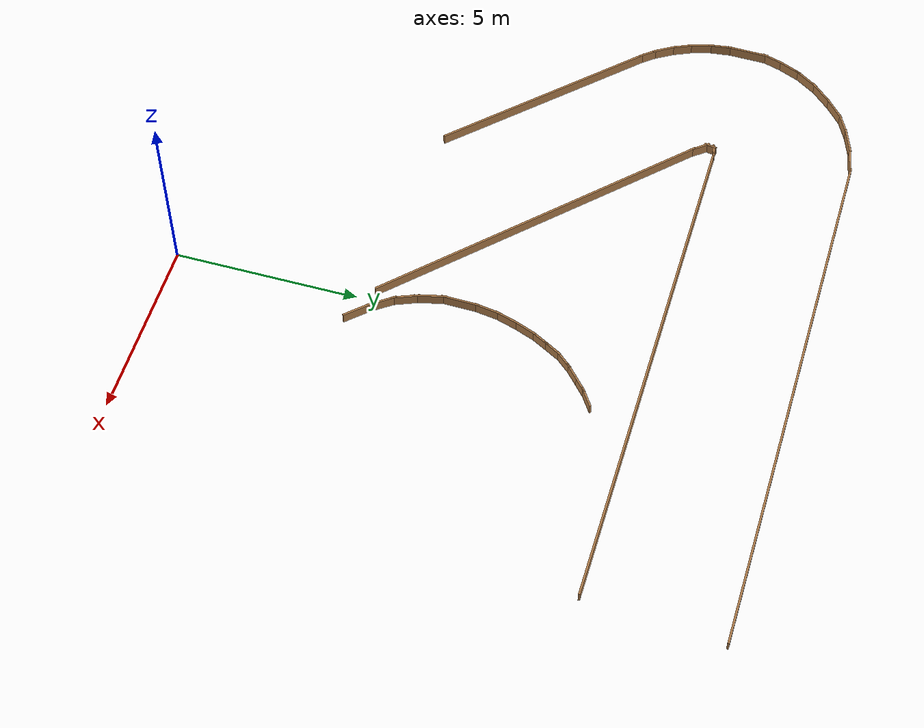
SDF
<sdf version="1.6">
 <model name="rover_racetrack">
  <pose>3.369 -0.8264 0 0 -0 0</pose>
  <link name="Wall_244">
   <collision name="Wall_244_Collision">
    <geometry><box><size>6.3767 0.05 0.3</size></box></geometry>
    <pose>0 0 0.15 0 -0 0</pose>
   </collision>
   <visual name="Wall_244_Visual">
    <pose>0 0 0.15 0 -0 0</pose>
    <geometry><box><size>6.3767 0.05 0.3</size></box></geometry>
    <material>
     <script><uri>file://media/materials/scripts/gazebo.material</uri><name>Gazebo/Wood</name></script>
     <ambient>0.435294 0.796078 0.67451 1</ambient>
    </material>
   </visual>
   <pose>-11.2879 8.75753 0 0 -0 2.34846</pose>
  </link>
  <link name="Wall_246">
   <collision name="Wall_246_Collision">
    <geometry><box><size>0.561974 0.05 0.3</size></box></geometry>
    <pose>0 0 0.15 0 -0 0</pose>
   </collision>
   <visual name="Wall_246_Visual">
    <pose>0 0 0.15 0 -0 0</pose>
    <geometry><box><size>0.561974 0.05 0.3</size></box></geometry>
    <material>
     <script><uri>file://media/materials/scripts/gazebo.material</uri><name>Gazebo/Wood</name></script>
     <ambient>0.435294 0.796078 0.67451 1</ambient>
    </material>
   </visual>
   <pose>-13.6021 11.1359 0 0 -0 2.25272</pose>
  </link>
  <link name="Wall_247">
   <collision name="Wall_247_Collision">
    <geometry><box><size>0.68226 0.05 0.3</size></box></geometry>
    <pose>0 0 0.15 0 -0 0</pose>
   </collision>
   <visual name="Wall_247_Visual">
    <pose>0 0 0.15 0 -0 0</pose>
    <geometry><box><size>0.68226 0.05 0.3</size></box></geometry>
    <material>
     <script><uri>file://media/materials/scripts/gazebo.material</uri><name>Gazebo/Wood</name></script>
     <ambient>0.435294 0.796078 0.67451 1</ambient>
    </material>
   </visual>
   <pose>-13.8714 11.5225 0 0 -0 2.12245</pose>
  </link>
  <link name="Wall_248">
   <collision name="Wall_248_Collision">
    <geometry><box><size>0.665137 0.05 0.3</size></box></geometry>
    <pose>0 0 0.15 0 -0 0</pose>
   </collision>
   <visual name="Wall_248_Visual">
    <pose>0 0 0.15 0 -0 0</pose>
    <geometry><box><size>0.665137 0.05 0.3</size></box></geometry>
    <material>
     <script><uri>file://media/materials/scripts/gazebo.material</uri><name>Gazebo/Wood</name></script>
     <ambient>0.435294 0.796078 0.67451 1</ambient>
    </material>
   </visual>
   <pose>-14.1155 11.9845 0 0 -0 1.98902</pose>
  </link>
  <link name="Wall_249">
   <collision name="Wall_249_Collision">
    <geometry><box><size>0.712795 0.05 0.3</size></box></geometry>
    <pose>0 0 0.15 0 -0 0</pose>
   </collision>
   <visual name="Wall_249_Visual">
    <pose>0 0 0.15 0 -0 0</pose>
    <geometry><box><size>0.712795 0.05 0.3</size></box></geometry>
    <material>
     <script><uri>file://media/materials/scripts/gazebo.material</uri><name>Gazebo/Wood</name></script>
     <ambient>0.435294 0.796078 0.67451 1</ambient>
    </material>
   </visual>
   <pose>-14.2986 12.4901 0 0 -0 1.85335</pose>
  </link>
  <link name="Wall_250">
   <collision name="Wall_250_Collision">
    <geometry><box><size>0.694958 0.05 0.3</size></box></geometry>
    <pose>0 0 0.15 0 -0 0</pose>
   </collision>
   <visual name="Wall_250_Visual">
    <pose>0 0 0.15 0 -0 0</pose>
    <geometry><box><size>0.694958 0.05 0.3</size></box></geometry>
    <material>
     <script><uri>file://media/materials/scripts/gazebo.material</uri><name>Gazebo/Wood</name></script>
     <ambient>0.435294 0.796078 0.67451 1</ambient>
    </material>
   </visual>
   <pose>-14.4119 13.0306 0 0 -0 1.69912</pose>
  </link>
  <link name="Wall_251">
   <collision name="Wall_251_Collision">
    <geometry><box><size>1.16182 0.05 0.3</size></box></geometry>
    <pose>0 0 0.15 0 -0 0</pose>
   </collision>
   <visual name="Wall_251_Visual">
    <pose>0 0 0.15 0 -0 0</pose>
    <geometry><box><size>1.16182 0.05 0.3</size></box></geometry>
    <material>
     <script><uri>file://media/materials/scripts/gazebo.material</uri><name>Gazebo/Wood</name></script>
     <ambient>0.435294 0.796078 0.67451 1</ambient>
    </material>
   </visual>
   <pose>-14.438 13.8064 0 0 -0 1.55356</pose>
  </link>
  <link name="Wall_252">
   <collision name="Wall_252_Collision">
    <geometry><box><size>0.640967 0.05 0.3</size></box></geometry>
    <pose>0 0 0.15 0 -0 0</pose>
   </collision>
   <visual name="Wall_252_Visual">
    <pose>0 0 0.15 0 -0 0</pose>
    <geometry><box><size>0.640967 0.05 0.3</size></box></geometry>
    <material>
     <script><uri>file://media/materials/scripts/gazebo.material</uri><name>Gazebo/Wood</name></script>
     <ambient>0.435294 0.796078 0.67451 1</ambient>
    </material>
   </visual>
   <pose>-14.3596 14.5474 0 0 -0 1.28274</pose>
  </link>
  <link name="Wall_253">
   <collision name="Wall_253_Collision">
    <geometry><box><size>0.736078 0.05 0.3</size></box></geometry>
    <pose>0 0 0.15 0 -0 0</pose>
   </collision>
   <visual name="Wall_253_Visual">
    <pose>0 0 0.15 0 -0 0</pose>
    <geometry><box><size>0.736078 0.05 0.3</size></box></geometry>
    <material>
     <script><uri>file://media/materials/scripts/gazebo.material</uri><name>Gazebo/Wood</name></script>
     <ambient>0.435294 0.796078 0.67451 1</ambient>
    </material>
   </visual>
   <pose>-14.1765 15.053 0 0 -0 1.17372</pose>
  </link>
  <link name="Wall_254">
   <collision name="Wall_254_Collision">
    <geometry><box><size>0.793199 0.05 0.3</size></box></geometry>
    <pose>0 0 0.15 0 -0 0</pose>
   </collision>
   <visual name="Wall_254_Visual">
    <pose>0 0 0.15 0 -0 0</pose>
    <geometry><box><size>0.793199 0.05 0.3</size></box></geometry>
    <material>
     <script><uri>file://media/materials/scripts/gazebo.material</uri><name>Gazebo/Wood</name></script>
     <ambient>0.435294 0.796078 0.67451 1</ambient>
    </material>
   </visual>
   <pose>-13.8888 15.5935 0 0 -0 0.99783</pose>
  </link>
  <link name="Wall_256">
   <collision name="Wall_256_Collision">
    <geometry><box><size>0.816181 0.05 0.3</size></box></geometry>
    <pose>0 0 0.15 0 -0 0</pose>
   </collision>
   <visual name="Wall_256_Visual">
    <pose>0 0 0.15 0 -0 0</pose>
    <geometry><box><size>0.816181 0.05 0.3</size></box></geometry>
    <material>
     <script><uri>file://media/materials/scripts/gazebo.material</uri><name>Gazebo/Wood</name></script>
     <ambient>0.435294 0.796078 0.67451 1</ambient>
    </material>
   </visual>
   <pose>-13.4878 16.1078 0 0 -0 0.822418</pose>
  </link>
  <link name="Wall_257">
   <collision name="Wall_257_Collision">
    <geometry><box><size>0.779827 0.05 0.3</size></box></geometry>
    <pose>0 0 0.15 0 -0 0</pose>
   </collision>
   <visual name="Wall_257_Visual">
    <pose>0 0 0.15 0 -0 0</pose>
    <geometry><box><size>0.779827 0.05 0.3</size></box></geometry>
    <material>
     <script><uri>file://media/materials/scripts/gazebo.material</uri><name>Gazebo/Wood</name></script>
     <ambient>0.435294 0.796078 0.67451 1</ambient>
    </material>
   </visual>
   <pose>-13.0258 16.5611 0 0 -0 0.726642</pose>
  </link>
  <link name="Wall_258">
   <collision name="Wall_258_Collision">
    <geometry><box><size>0.719239 0.05 0.3</size></box></geometry>
    <pose>0 0 0.15 0 -0 0</pose>
   </collision>
   <visual name="Wall_258_Visual">
    <pose>0 0 0.15 0 -0 0</pose>
    <geometry><box><size>0.719239 0.05 0.3</size></box></geometry>
    <material>
     <script><uri>file://media/materials/scripts/gazebo.material</uri><name>Gazebo/Wood</name></script>
     <ambient>0.435294 0.796078 0.67451 1</ambient>
    </material>
   </visual>
   <pose>-12.5376 16.9011 0 0 -0 0.477345</pose>
  </link>
  <link name="Wall_259">
   <collision name="Wall_259_Collision">
    <geometry><box><size>0.784635 0.05 0.3</size></box></geometry>
    <pose>0 0 0.15 0 -0 0</pose>
   </collision>
   <visual name="Wall_259_Visual">
    <pose>0 0 0.15 0 -0 0</pose>
    <geometry><box><size>0.784635 0.05 0.3</size></box></geometry>
    <material>
     <script><uri>file://media/materials/scripts/gazebo.material</uri><name>Gazebo/Wood</name></script>
     <ambient>0.435294 0.796078 0.67451 1</ambient>
    </material>
   </visual>
   <pose>-11.9885 17.1452 0 0 -0 0.365201</pose>
  </link>
  <link name="Wall_260">
   <collision name="Wall_260_Collision">
    <geometry><box><size>0.861202 0.05 0.3</size></box></geometry>
    <pose>0 0 0.15 0 -0 0</pose>
   </collision>
   <visual name="Wall_260_Visual">
    <pose>0 0 0.15 0 -0 0</pose>
    <geometry><box><size>0.861202 0.05 0.3</size></box></geometry>
    <material>
     <script><uri>file://media/materials/scripts/gazebo.material</uri><name>Gazebo/Wood</name></script>
     <ambient>0.435294 0.796078 0.67451 1</ambient>
    </material>
   </visual>
   <pose>-11.3434 17.3282 0 0 -0 0.197396</pose>
  </link>
  <link name="Wall_262">
   <collision name="Wall_262_Collision">
    <geometry><box><size>14.25 0.05 0.3</size></box></geometry>
    <pose>0 0 0.15 0 -0 0</pose>
   </collision>
   <visual name="Wall_262_Visual">
    <pose>0 0 0.15 0 -0 0</pose>
    <geometry><box><size>14.25 0.05 0.3</size></box></geometry>
    <material>
     <script><uri>file://media/materials/scripts/gazebo.material</uri><name>Gazebo/Wood</name></script>
     <ambient>0.435294 0.796078 0.67451 1</ambient>
    </material>
   </visual>
   <pose>-3.43877 13.7203 0 0 -0 0</pose>
  </link>
  <link name="Wall_411">
   <collision name="Wall_411_Collision">
    <geometry><box><size>0.610946 0.05 0.3</size></box></geometry>
    <pose>0 0 0.15 0 -0 0</pose>
   </collision>
   <visual name="Wall_411_Visual">
    <pose>0 0 0.15 0 -0 0</pose>
    <geometry><box><size>0.610946 0.05 0.3</size></box></geometry>
    <material>
     <script><uri>file://media/materials/scripts/gazebo.material</uri><name>Gazebo/Wood</name></script>
     <ambient>0.435294 0.796078 0.67451 1</ambient>
    </material>
   </visual>
   <pose>-1.8231 12.4357 0 0 0 -2.54442</pose>
  </link>
  <link name="Wall_412">
   <collision name="Wall_412_Collision">
    <geometry><box><size>0.51719 0.05 0.3</size></box></geometry>
    <pose>0 0 0.15 0 -0 0</pose>
   </collision>
   <visual name="Wall_412_Visual">
    <pose>0 0 0.15 0 -0 0</pose>
    <geometry><box><size>0.51719 0.05 0.3</size></box></geometry>
    <material>
     <script><uri>file://media/materials/scripts/gazebo.material</uri><name>Gazebo/Wood</name></script>
     <ambient>0.435294 0.796078 0.67451 1</ambient>
    </material>
   </visual>
   <pose>-2.15091 12.1841 0 0 0 -2.41495</pose>
  </link>
  <link name="Wall_413">
   <collision name="Wall_413_Collision">
    <geometry><box><size>0.603319 0.05 0.3</size></box></geometry>
    <pose>0 0 0.15 0 -0 0</pose>
   </collision>
   <visual name="Wall_413_Visual">
    <pose>0 0 0.15 0 -0 0</pose>
    <geometry><box><size>0.603319 0.05 0.3</size></box></geometry>
    <material>
     <script><uri>file://media/materials/scripts/gazebo.material</uri><name>Gazebo/Wood</name></script>
     <ambient>0.435294 0.796078 0.67451 1</ambient>
    </material>
   </visual>
   <pose>-2.45584 11.9097 0 0 0 -2.40378</pose>
  </link>
  <link name="Wall_414">
   <collision name="Wall_414_Collision">
    <geometry><box><size>0.614713 0.05 0.3</size></box></geometry>
    <pose>0 0 0.15 0 -0 0</pose>
   </collision>
   <visual name="Wall_414_Visual">
    <pose>0 0 0.15 0 -0 0</pose>
    <geometry><box><size>0.614713 0.05 0.3</size></box></geometry>
    <material>
     <script><uri>file://media/materials/scripts/gazebo.material</uri><name>Gazebo/Wood</name></script>
     <ambient>0.435294 0.796078 0.67451 1</ambient>
    </material>
   </visual>
   <pose>-2.77602 11.5819 0 0 0 -2.28654</pose>
  </link>
  <link name="Wall_415">
   <collision name="Wall_415_Collision">
    <geometry><box><size>0.586867 0.05 0.3</size></box></geometry>
    <pose>0 0 0.15 0 -0 0</pose>
   </collision>
   <visual name="Wall_415_Visual">
    <pose>0 0 0.15 0 -0 0</pose>
    <geometry><box><size>0.586867 0.05 0.3</size></box></geometry>
    <material>
     <script><uri>file://media/materials/scripts/gazebo.material</uri><name>Gazebo/Wood</name></script>
     <ambient>0.435294 0.796078 0.67451 1</ambient>
    </material>
   </visual>
   <pose>-3.03522 11.2159 0 0 0 -2.08128</pose>
  </link>
  <link name="Wall_416">
   <collision name="Wall_416_Collision">
    <geometry><box><size>0.600231 0.05 0.3</size></box></geometry>
    <pose>0 0 0.15 0 -0 0</pose>
   </collision>
   <visual name="Wall_416_Visual">
    <pose>0 0 0.15 0 -0 0</pose>
    <geometry><box><size>0.600231 0.05 0.3</size></box></geometry>
    <material>
     <script><uri>file://media/materials/scripts/gazebo.material</uri><name>Gazebo/Wood</name></script>
     <ambient>0.435294 0.796078 0.67451 1</ambient>
    </material>
   </visual>
   <pose>-3.24867 10.8271 0 0 0 -2.06474</pose>
  </link>
  <link name="Wall_417">
   <collision name="Wall_417_Collision">
    <geometry><box><size>0.70499 0.05 0.3</size></box></geometry>
    <pose>0 0 0.15 0 -0 0</pose>
   </collision>
   <visual name="Wall_417_Visual">
    <pose>0 0 0.15 0 -0 0</pose>
    <geometry><box><size>0.70499 0.05 0.3</size></box></geometry>
    <material>
     <script><uri>file://media/materials/scripts/gazebo.material</uri><name>Gazebo/Wood</name></script>
     <ambient>0.435294 0.796078 0.67451 1</ambient>
    </material>
   </visual>
   <pose>-3.45451 10.3697 0 0 0 -1.936</pose>
  </link>
  <link name="Wall_418">
   <collision name="Wall_418_Collision">
    <geometry><box><size>0.723934 0.05 0.3</size></box></geometry>
    <pose>0 0 0.15 0 -0 0</pose>
   </collision>
   <visual name="Wall_418_Visual">
    <pose>0 0 0.15 0 -0 0</pose>
    <geometry><box><size>0.723934 0.05 0.3</size></box></geometry>
    <material>
     <script><uri>file://media/materials/scripts/gazebo.material</uri><name>Gazebo/Wood</name></script>
     <ambient>0.435294 0.796078 0.67451 1</ambient>
    </material>
   </visual>
   <pose>-3.63747 9.8361 0 0 0 -1.86734</pose>
  </link>
  <link name="Wall_419">
   <collision name="Wall_419_Collision">
    <geometry><box><size>0.766693 0.05 0.3</size></box></geometry>
    <pose>0 0 0.15 0 -0 0</pose>
   </collision>
   <visual name="Wall_419_Visual">
    <pose>0 0 0.15 0 -0 0</pose>
    <geometry><box><size>0.766693 0.05 0.3</size></box></geometry>
    <material>
     <script><uri>file://media/materials/scripts/gazebo.material</uri><name>Gazebo/Wood</name></script>
     <ambient>0.435294 0.796078 0.67451 1</ambient>
    </material>
   </visual>
   <pose>-3.76706 9.25672 0 0 0 -1.71969</pose>
  </link>
  <link name="Wall_420">
   <collision name="Wall_420_Collision">
    <geometry><box><size>1.03444 0.05 0.3</size></box></geometry>
    <pose>0 0 0.15 0 -0 0</pose>
   </collision>
   <visual name="Wall_420_Visual">
    <pose>0 0 0.15 0 -0 0</pose>
    <geometry><box><size>1.03444 0.05 0.3</size></box></geometry>
    <material>
     <script><uri>file://media/materials/scripts/gazebo.material</uri><name>Gazebo/Wood</name></script>
     <ambient>0.435294 0.796078 0.67451 1</ambient>
    </material>
   </visual>
   <pose>-3.82043 8.50963 0 0 0 -1.58804</pose>
  </link>
  <link name="Wall_422">
   <collision name="Wall_422_Collision">
    <geometry><box><size>0.841504 0.05 0.3</size></box></geometry>
    <pose>0 0 0.15 0 -0 0</pose>
   </collision>
   <visual name="Wall_422_Visual">
    <pose>0 0 0.15 0 -0 0</pose>
    <geometry><box><size>0.841504 0.05 0.3</size></box></geometry>
    <material>
     <script><uri>file://media/materials/scripts/gazebo.material</uri><name>Gazebo/Wood</name></script>
     <ambient>0.435294 0.796078 0.67451 1</ambient>
    </material>
   </visual>
   <pose>-3.74419 7.73205 0 0 0 -1.32582</pose>
  </link>
  <link name="Wall_423">
   <collision name="Wall_423_Collision">
    <geometry><box><size>0.758726 0.05 0.3</size></box></geometry>
    <pose>0 0 0.15 0 -0 0</pose>
   </collision>
   <visual name="Wall_423_Visual">
    <pose>0 0 0.15 0 -0 0</pose>
    <geometry><box><size>0.758726 0.05 0.3</size></box></geometry>
    <material>
     <script><uri>file://media/materials/scripts/gazebo.material</uri><name>Gazebo/Wood</name></script>
     <ambient>0.435294 0.796078 0.67451 1</ambient>
    </material>
   </visual>
   <pose>-3.54598 7.11455 0 0 0 -1.18564</pose>
  </link>
  <link name="Wall_424">
   <collision name="Wall_424_Collision">
    <geometry><box><size>0.805788 0.05 0.3</size></box></geometry>
    <pose>0 0 0.15 0 -0 0</pose>
   </collision>
   <visual name="Wall_424_Visual">
    <pose>0 0 0.15 0 -0 0</pose>
    <geometry><box><size>0.805788 0.05 0.3</size></box></geometry>
    <material>
     <script><uri>file://media/materials/scripts/gazebo.material</uri><name>Gazebo/Wood</name></script>
     <ambient>0.435294 0.796078 0.67451 1</ambient>
    </material>
   </visual>
   <pose>-3.24105 6.56567 0 0 0 -0.950547</pose>
  </link>
  <link name="Wall_425">
   <collision name="Wall_425_Collision">
    <geometry><box><size>0.840326 0.05 0.3</size></box></geometry>
    <pose>0 0 0.15 0 -0 0</pose>
   </collision>
   <visual name="Wall_425_Visual">
    <pose>0 0 0.15 0 -0 0</pose>
    <geometry><box><size>0.840326 0.05 0.3</size></box></geometry>
    <material>
     <script><uri>file://media/materials/scripts/gazebo.material</uri><name>Gazebo/Wood</name></script>
     <ambient>0.435294 0.796078 0.67451 1</ambient>
    </material>
   </visual>
   <pose>-2.81414 6.04728 0 0 0 -0.816638</pose>
  </link>
  <link name="Wall_43">
   <collision name="Wall_43_Collision">
    <geometry><box><size>15 0.05 0.3</size></box></geometry>
    <pose>0 0 0.15 0 -0 0</pose>
   </collision>
   <visual name="Wall_43_Visual">
    <pose>0 0 0.15 0 -0 0</pose>
    <geometry><box><size>15 0.05 0.3</size></box></geometry>
    <material>
     <script><uri>file://media/materials/scripts/gazebo.material</uri><name>Gazebo/Wood</name></script>
     <ambient>0.435294 0.796078 0.67451 1</ambient>
    </material>
   </visual>
   <pose>-3.53003 17.4121 0 0 -0 0</pose>
  </link>
  <link name="Wall_439">
   <collision name="Wall_439_Collision">
    <geometry><box><size>9.81974 0.05 0.3</size></box></geometry>
    <pose>0 0 0.15 0 -0 0</pose>
   </collision>
   <visual name="Wall_439_Visual">
    <pose>0 0 0.15 0 -0 0</pose>
    <geometry><box><size>9.81974 0.05 0.3</size></box></geometry>
    <material>
     <script><uri>file://media/materials/scripts/gazebo.material</uri><name>Gazebo/Wood</name></script>
     <ambient>0.435294 0.796078 0.67451 1</ambient>
    </material>
   </visual>
   <pose>-7.06752 9.72911 0 0 -0 2.36174</pose>
  </link>
  <link name="Wall_440">
   <collision name="Wall_440_Collision">
    <geometry><box><size>0.587366 0.05 0.3</size></box></geometry>
    <pose>0 0 0.15 0 -0 0</pose>
   </collision>
   <visual name="Wall_440_Visual">
    <pose>0 0 0.15 0 -0 0</pose>
    <geometry><box><size>0.587366 0.05 0.3</size></box></geometry>
    <material>
     <script><uri>file://media/materials/scripts/gazebo.material</uri><name>Gazebo/Wood</name></script>
     <ambient>0.435294 0.796078 0.67451 1</ambient>
    </material>
   </visual>
   <pose>-10.6385 13.3022 0 0 -0 2.22649</pose>
  </link>
  <link name="Wall_442">
   <collision name="Wall_442_Collision">
    <geometry><box><size>0.349298 0.05 0.3</size></box></geometry>
    <pose>0 0 0.15 0 -0 0</pose>
   </collision>
   <visual name="Wall_442_Visual">
    <pose>0 0 0.15 0 -0 0</pose>
    <geometry><box><size>0.349298 0.05 0.3</size></box></geometry>
    <material>
     <script><uri>file://media/materials/scripts/gazebo.material</uri><name>Gazebo/Wood</name></script>
     <ambient>0.435294 0.796078 0.67451 1</ambient>
    </material>
   </visual>
   <pose>-10.7553 13.5738 0 0 -0 1.40434</pose>
  </link>
  <link name="Wall_443">
   <collision name="Wall_443_Collision">
    <geometry><box><size>0.375116 0.05 0.3</size></box></geometry>
    <pose>0 0 0.15 0 -0 0</pose>
   </collision>
   <visual name="Wall_443_Visual">
    <pose>0 0 0.15 0 -0 0</pose>
    <geometry><box><size>0.375116 0.05 0.3</size></box></geometry>
    <material>
     <script><uri>file://media/materials/scripts/gazebo.material</uri><name>Gazebo/Wood</name></script>
     <ambient>0.435294 0.796078 0.67451 1</ambient>
    </material>
   </visual>
   <pose>-10.6286 13.6946 0 0 -0 0.201762</pose>
  </link>
  <static>1</static>
 </model>
</sdf>
